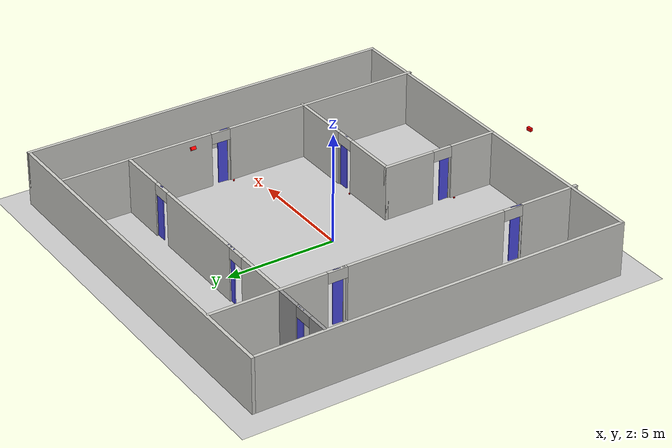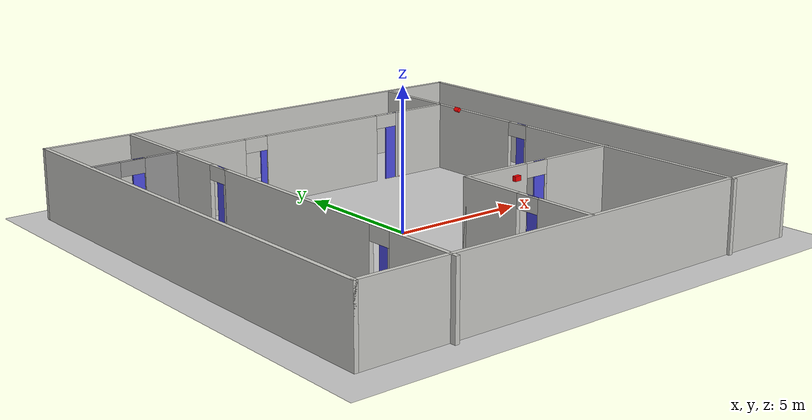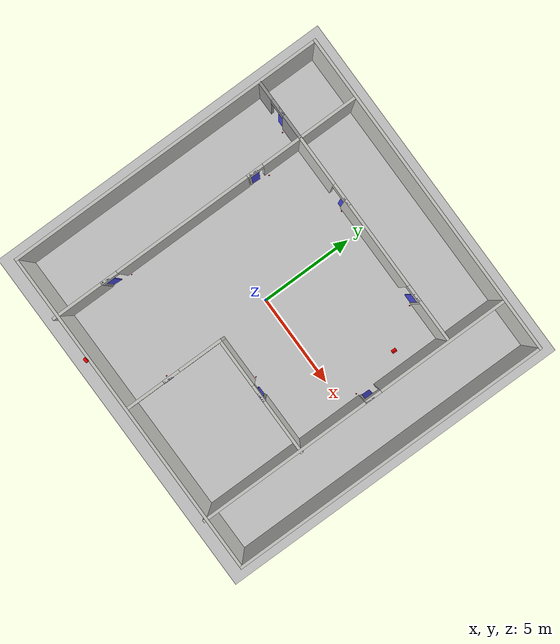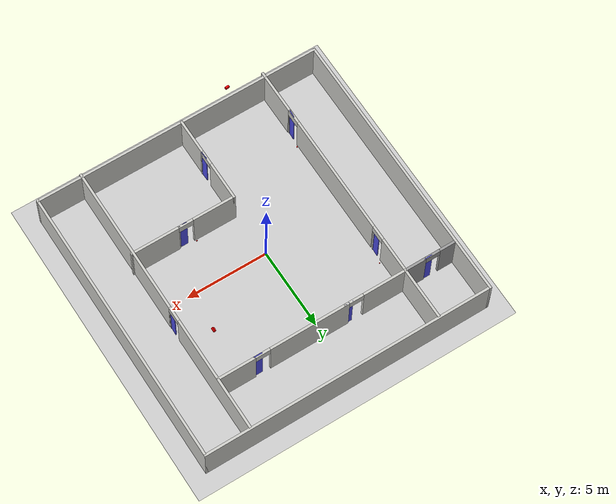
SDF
<sdf version="1.7">
 <world name="default">
  <light name="sun" type="directional">
   <pose>0 0 10 0 -0 0</pose>
   <diffuse>0.8 0.8 0.8 1</diffuse>
   <specular>0.2 0.2 0.2 1</specular>
   <attenuation>
    <range>1000</range>
    <constant>0.9</constant>
    <linear>0.01</linear>
    <quadratic>0.001</quadratic>
   </attenuation>
   <direction>-0.5 0.1 -0.9</direction>
   <spot><inner_angle>0</inner_angle><outer_angle>0</outer_angle><falloff>0</falloff></spot>
  </light>
  <model name="ground_plane">
   <static>1</static>
   <link name="link">
    <collision name="collision">
     <geometry><plane><normal>0 0 1</normal><size>100 100</size></plane></geometry>
     <surface><friction><ode><mu>100</mu><mu2>50</mu2></ode></friction></surface>
    </collision>
    <visual name="visual">
     <cast_shadows>0</cast_shadows>
     <geometry><plane><normal>0 0 1</normal><size>100 100</size></plane></geometry>
     <material>
      <script><uri>file://media/materials/scripts/gazebo.material</uri><name>Gazebo/Grey</name></script>
     </material>
    </visual>
   </link>
  </model>
  <gravity>0 0 -9.8</gravity>
  <magnetic_field>6e-06 2.3e-05 -4.2e-05</magnetic_field>
  <atmosphere type="adiabatic"/>
  <physics type="ode">
   <max_step_size>0.001</max_step_size>
   <real_time_factor>1</real_time_factor>
   <real_time_update_rate>1000</real_time_update_rate>
  </physics>
  <scene><ambient>0.4 0.4 0.4 1</ambient><background>0.7 0.7 0.7 1</background><shadows>1</shadows></scene>
  <spherical_coordinates>
   <surface_model>EARTH_WGS84</surface_model>
   <latitude_deg>0</latitude_deg>
   <longitude_deg>0</longitude_deg>
   <elevation>0</elevation>
   <heading_deg>0</heading_deg>
  </spherical_coordinates>
  <model name="jamworldp">
   <pose>0.50308 0.278247 0 0 -0 0</pose>
   <link name="Wall_29">
    <collision name="Wall_29_Collision">
     <geometry><box><size>17.75 0.15 2.5</size></box></geometry>
     <pose>0 0 1.25 0 -0 0</pose>
    </collision>
    <visual name="Wall_29_Visual">
     <pose>0 0 1.25 0 -0 0</pose>
     <geometry><box><size>17.75 0.15 2.5</size></box></geometry>
     <material>
      <script><uri>file://media/materials/scripts/gazebo.material</uri><name>Gazebo/CeilingTiled</name></script>
      <ambient>1 1 1 1</ambient>
     </material>
     <meta><layer>0</layer></meta>
    </visual>
    <pose>-0 8.65066 0 0 -0 0</pose>
   </link>
   <link name="Wall_31">
    <collision name="Wall_31_Collision">
     <geometry><box><size>17.25 0.15 2.5</size></box></geometry>
     <pose>0 0 1.25 0 -0 0</pose>
    </collision>
    <visual name="Wall_31_Visual">
     <pose>0 0 1.25 0 -0 0</pose>
     <geometry><box><size>17.25 0.15 2.5</size></box></geometry>
     <material>
      <script><uri>file://media/materials/scripts/gazebo.material</uri><name>Gazebo/CeilingTiled</name></script>
      <ambient>1 1 1 1</ambient>
     </material>
     <meta><layer>0</layer></meta>
    </visual>
    <pose>8.8 0.100659 0 0 -0 -1.5708</pose>
   </link>
   <link name="Wall_35">
    <collision name="Wall_35_Collision">
     <geometry><box><size>17.25 0.15 2.5</size></box></geometry>
     <pose>0 0 1.25 0 -0 0</pose>
    </collision>
    <visual name="Wall_35_Visual">
     <pose>0 0 1.25 0 -0 0</pose>
     <geometry><box><size>17.25 0.15 2.5</size></box></geometry>
     <material>
      <script><uri>file://media/materials/scripts/gazebo.material</uri><name>Gazebo/CeilingTiled</name></script>
      <ambient>1 1 1 1</ambient>
     </material>
     <meta><layer>0</layer></meta>
    </visual>
    <pose>-8.8 0.100659 0 0 -0 -1.5708</pose>
   </link>
   <link name="Wall_36">
    <collision name="Wall_36_Collision">
     <geometry><box><size>17.75 0.15 2.5</size></box></geometry>
     <pose>0 0 1.25 0 -0 0</pose>
    </collision>
    <visual name="Wall_36_Visual">
     <pose>0 0 1.25 0 -0 0</pose>
     <geometry><box><size>17.75 0.15 2.5</size></box></geometry>
     <material>
      <script><uri>file://media/materials/scripts/gazebo.material</uri><name>Gazebo/CeilingTiled</name></script>
      <ambient>1 1 1 1</ambient>
     </material>
     <meta><layer>0</layer></meta>
    </visual>
    <pose>-0 -8.44934 0 0 -0 0</pose>
   </link>
   <link name="Wall_39">
    <pose>6.05803 -0.003168 0 0 -0 -1.5708</pose>
    <visual name="Wall_39_Visual_0">
     <pose>-5.08884 0 1.25 0 -0 0</pose>
     <geometry><box><size>7.07231 0.15 2.5</size></box></geometry>
     <material>
      <script><uri>file://media/materials/scripts/gazebo.material</uri><name>Gazebo/CeilingTiled</name></script>
      <ambient>1 1 1 1</ambient>
     </material>
     <meta><layer>0</layer></meta>
    </visual>
    <collision name="Wall_39_Collision_0">
     <geometry><box><size>7.07231 0.15 2.5</size></box></geometry>
     <pose>-5.08884 0 1.25 0 -0 0</pose>
    </collision>
    <visual name="Wall_39_Visual_1">
     <pose>3.98616 0 1.25 0 -0 0</pose>
     <geometry><box><size>9.27769 0.15 2.5</size></box></geometry>
     <material>
      <script><uri>file://media/materials/scripts/gazebo.material</uri><name>Gazebo/CeilingTiled</name></script>
      <ambient>1 1 1 1</ambient>
     </material>
     <meta><layer>0</layer></meta>
    </visual>
    <collision name="Wall_39_Collision_1">
     <geometry><box><size>9.27769 0.15 2.5</size></box></geometry>
     <pose>3.98616 0 1.25 0 -0 0</pose>
    </collision>
    <visual name="Wall_39_Visual_2">
     <pose>-1.10269 0 2.25 0 -0 0</pose>
     <geometry><box><size>0.9 0.15 0.5</size></box></geometry>
     <material>
      <script><uri>file://media/materials/scripts/gazebo.material</uri><name>Gazebo/CeilingTiled</name></script>
      <ambient>1 1 1 1</ambient>
     </material>
     <meta><layer>0</layer></meta>
    </visual>
    <collision name="Wall_39_Collision_2">
     <geometry><box><size>0.9 0.15 0.5</size></box></geometry>
     <pose>-1.10269 0 2.25 0 -0 0</pose>
    </collision>
   </link>
   <link name="Wall_41">
    <pose>-0.217405 -5.75402 0 0 -0 1.5708</pose>
    <visual name="Wall_41_Visual_0">
     <pose>-1.65323 0 1.25 0 -0 0</pose>
     <geometry><box><size>2.19354 0.15 2.5</size></box></geometry>
     <material>
      <script><uri>file://media/materials/scripts/gazebo.material</uri><name>Gazebo/CeilingTiled</name></script>
      <ambient>1 1 1 1</ambient>
     </material>
     <meta><layer>0</layer></meta>
    </visual>
    <collision name="Wall_41_Collision_0">
     <geometry><box><size>2.19354 0.15 2.5</size></box></geometry>
     <pose>-1.65323 0 1.25 0 -0 0</pose>
    </collision>
    <visual name="Wall_41_Visual_1">
     <pose>1.54677 0 1.25 0 -0 0</pose>
     <geometry><box><size>2.40646 0.15 2.5</size></box></geometry>
     <material>
      <script><uri>file://media/materials/scripts/gazebo.material</uri><name>Gazebo/CeilingTiled</name></script>
      <ambient>1 1 1 1</ambient>
     </material>
     <meta><layer>0</layer></meta>
    </visual>
    <collision name="Wall_41_Collision_1">
     <geometry><box><size>2.40646 0.15 2.5</size></box></geometry>
     <pose>1.54677 0 1.25 0 -0 0</pose>
    </collision>
    <visual name="Wall_41_Visual_2">
     <pose>-0.106458 0 2.25 0 -0 0</pose>
     <geometry><box><size>0.9 0.15 0.5</size></box></geometry>
     <material>
      <script><uri>file://media/materials/scripts/gazebo.material</uri><name>Gazebo/CeilingTiled</name></script>
      <ambient>1 1 1 1</ambient>
     </material>
     <meta><layer>0</layer></meta>
    </visual>
    <collision name="Wall_41_Collision_2">
     <geometry><box><size>0.9 0.15 0.5</size></box></geometry>
     <pose>-0.106458 0 2.25 0 -0 0</pose>
    </collision>
   </link>
   <link name="Wall_42">
    <pose>2.95759 -3.07902 0 0 -0 0</pose>
    <visual name="Wall_42_Visual_0">
     <pose>-1.92496 0 1.25 0 -0 0</pose>
     <geometry><box><size>2.65009 0.15 2.5</size></box></geometry>
     <material>
      <script><uri>file://media/materials/scripts/gazebo.material</uri><name>Gazebo/CeilingTiled</name></script>
      <ambient>1 1 1 1</ambient>
     </material>
     <meta><layer>0</layer></meta>
    </visual>
    <collision name="Wall_42_Collision_0">
     <geometry><box><size>2.65009 0.15 2.5</size></box></geometry>
     <pose>-1.92496 0 1.25 0 -0 0</pose>
    </collision>
    <visual name="Wall_42_Visual_1">
     <pose>1.77504 0 1.25 0 -0 0</pose>
     <geometry><box><size>2.94991 0.15 2.5</size></box></geometry>
     <material>
      <script><uri>file://media/materials/scripts/gazebo.material</uri><name>Gazebo/CeilingTiled</name></script>
      <ambient>1 1 1 1</ambient>
     </material>
     <meta><layer>0</layer></meta>
    </visual>
    <collision name="Wall_42_Collision_1">
     <geometry><box><size>2.94991 0.15 2.5</size></box></geometry>
     <pose>1.77504 0 1.25 0 -0 0</pose>
    </collision>
    <visual name="Wall_42_Visual_2">
     <pose>-0.149912 0 2.25 0 -0 0</pose>
     <geometry><box><size>0.9 0.15 0.5</size></box></geometry>
     <material>
      <script><uri>file://media/materials/scripts/gazebo.material</uri><name>Gazebo/CeilingTiled</name></script>
      <ambient>1 1 1 1</ambient>
     </material>
     <meta><layer>0</layer></meta>
    </visual>
    <collision name="Wall_42_Collision_2">
     <geometry><box><size>0.9 0.15 0.5</size></box></geometry>
     <pose>-0.149912 0 2.25 0 -0 0</pose>
    </collision>
   </link>
   <link name="Wall_44">
    <pose>0.217802 5.44934 0 0 -0 3.14159</pose>
    <visual name="Wall_44_Visual_0">
     <pose>-4.71744 0 1.25 0 -0 0</pose>
     <geometry><box><size>2.31512 0.15 2.5</size></box></geometry>
     <material>
      <script><uri>file://media/materials/scripts/gazebo.material</uri><name>Gazebo/CeilingTiled</name></script>
      <ambient>1 1 1 1</ambient>
     </material>
     <meta><layer>0</layer></meta>
    </visual>
    <collision name="Wall_44_Collision_0">
     <geometry><box><size>2.31512 0.15 2.5</size></box></geometry>
     <pose>-4.71744 0 1.25 0 -0 0</pose>
    </collision>
    <visual name="Wall_44_Visual_1">
     <pose>-0.209881 0 1.25 0 -0 0</pose>
     <geometry><box><size>4.9 0.15 2.5</size></box></geometry>
     <material>
      <script><uri>file://media/materials/scripts/gazebo.material</uri><name>Gazebo/CeilingTiled</name></script>
      <ambient>1 1 1 1</ambient>
     </material>
     <meta><layer>0</layer></meta>
    </visual>
    <collision name="Wall_44_Collision_1">
     <geometry><box><size>4.9 0.15 2.5</size></box></geometry>
     <pose>-0.209881 0 1.25 0 -0 0</pose>
    </collision>
    <visual name="Wall_44_Visual_2">
     <pose>4.50756 0 1.25 0 -0 0</pose>
     <geometry><box><size>2.73488 0.15 2.5</size></box></geometry>
     <material>
      <script><uri>file://media/materials/scripts/gazebo.material</uri><name>Gazebo/CeilingTiled</name></script>
      <ambient>1 1 1 1</ambient>
     </material>
     <meta><layer>0</layer></meta>
    </visual>
    <collision name="Wall_44_Collision_2">
     <geometry><box><size>2.73488 0.15 2.5</size></box></geometry>
     <pose>4.50756 0 1.25 0 -0 0</pose>
    </collision>
    <visual name="Wall_44_Visual_3">
     <pose>-3.10988 0 2.25 0 -0 0</pose>
     <geometry><box><size>0.9 0.15 0.5</size></box></geometry>
     <material>
      <script><uri>file://media/materials/scripts/gazebo.material</uri><name>Gazebo/CeilingTiled</name></script>
      <ambient>1 1 1 1</ambient>
     </material>
     <meta><layer>0</layer></meta>
    </visual>
    <collision name="Wall_44_Collision_3">
     <geometry><box><size>0.9 0.15 0.5</size></box></geometry>
     <pose>-3.10988 0 2.25 0 -0 0</pose>
    </collision>
    <visual name="Wall_44_Visual_4">
     <pose>2.69012 0 2.25 0 -0 0</pose>
     <geometry><box><size>0.9 0.15 0.5</size></box></geometry>
     <material>
      <script><uri>file://media/materials/scripts/gazebo.material</uri><name>Gazebo/CeilingTiled</name></script>
      <ambient>1 1 1 1</ambient>
     </material>
     <meta><layer>0</layer></meta>
    </visual>
    <collision name="Wall_44_Collision_4">
     <geometry><box><size>0.9 0.15 0.5</size></box></geometry>
     <pose>2.69012 0 2.25 0 -0 0</pose>
    </collision>
   </link>
   <link name="Wall_45">
    <collision name="Wall_45_Collision">
     <geometry><box><size>3.25 0.15 2.5</size></box></geometry>
     <pose>0 0 1.25 0 -0 0</pose>
    </collision>
    <visual name="Wall_45_Visual">
     <pose>0 0 1.25 0 -0 0</pose>
     <geometry><box><size>3.25 0.15 2.5</size></box></geometry>
     <material>
      <script><uri>file://media/materials/scripts/gazebo.material</uri><name>Gazebo/CeilingTiled</name></script>
      <ambient>1 1 1 1</ambient>
     </material>
     <meta><layer>0</layer></meta>
    </visual>
    <pose>-5.5822 6.99934 0 0 -0 1.5708</pose>
   </link>
   <link name="Wall_47">
    <pose>-5.5822 -1.60066 0 0 -0 -1.5708</pose>
    <visual name="Wall_47_Visual_0">
     <pose>-6.01759 0 1.25 0 -0 0</pose>
     <geometry><box><size>2.21482 0.15 2.5</size></box></geometry>
     <material>
      <script><uri>file://media/materials/scripts/gazebo.material</uri><name>Gazebo/CeilingTiled</name></script>
      <ambient>1 1 1 1</ambient>
     </material>
     <meta><layer>0</layer></meta>
    </visual>
    <collision name="Wall_47_Collision_0">
     <geometry><box><size>2.21482 0.15 2.5</size></box></geometry>
     <pose>-6.01759 0 1.25 0 -0 0</pose>
    </collision>
    <visual name="Wall_47_Visual_1">
     <pose>-0.280177 0 1.25 0 -0 0</pose>
     <geometry><box><size>7.46 0.15 2.5</size></box></geometry>
     <material>
      <script><uri>file://media/materials/scripts/gazebo.material</uri><name>Gazebo/CeilingTiled</name></script>
      <ambient>1 1 1 1</ambient>
     </material>
     <meta><layer>0</layer></meta>
    </visual>
    <collision name="Wall_47_Collision_1">
     <geometry><box><size>7.46 0.15 2.5</size></box></geometry>
     <pose>-0.280177 0 1.25 0 -0 0</pose>
    </collision>
    <visual name="Wall_47_Visual_2">
     <pose>5.73741 0 1.25 0 -0 0</pose>
     <geometry><box><size>2.77518 0.15 2.5</size></box></geometry>
     <material>
      <script><uri>file://media/materials/scripts/gazebo.material</uri><name>Gazebo/CeilingTiled</name></script>
      <ambient>1 1 1 1</ambient>
     </material>
     <meta><layer>0</layer></meta>
    </visual>
    <collision name="Wall_47_Collision_2">
     <geometry><box><size>2.77518 0.15 2.5</size></box></geometry>
     <pose>5.73741 0 1.25 0 -0 0</pose>
    </collision>
    <visual name="Wall_47_Visual_3">
     <pose>-4.46018 0 2.25 0 -0 0</pose>
     <geometry><box><size>0.9 0.15 0.5</size></box></geometry>
     <material>
      <script><uri>file://media/materials/scripts/gazebo.material</uri><name>Gazebo/CeilingTiled</name></script>
      <ambient>1 1 1 1</ambient>
     </material>
     <meta><layer>0</layer></meta>
    </visual>
    <collision name="Wall_47_Collision_3">
     <geometry><box><size>0.9 0.15 0.5</size></box></geometry>
     <pose>-4.46018 0 2.25 0 -0 0</pose>
    </collision>
    <visual name="Wall_47_Visual_4">
     <pose>3.89982 0 2.25 0 -0 0</pose>
     <geometry><box><size>0.9 0.15 0.5</size></box></geometry>
     <material>
      <script><uri>file://media/materials/scripts/gazebo.material</uri><name>Gazebo/CeilingTiled</name></script>
      <ambient>1 1 1 1</ambient>
     </material>
     <meta><layer>0</layer></meta>
    </visual>
    <collision name="Wall_47_Collision_4">
     <geometry><box><size>0.9 0.15 0.5</size></box></geometry>
     <pose>3.89982 0 2.25 0 -0 0</pose>
    </collision>
   </link>
   <link name="Wall_49">
    <pose>-7.1322 5.44934 0 0 -0 3.14159</pose>
    <visual name="Wall_49_Visual_0">
     <pose>-0.94744 0 1.25 0 -0 0</pose>
     <geometry><box><size>1.35512 0.15 2.5</size></box></geometry>
     <material>
      <script><uri>file://media/materials/scripts/gazebo.material</uri><name>Gazebo/Grey</name></script>
      <ambient>1 1 1 1</ambient>
     </material>
     <meta><layer>0</layer></meta>
    </visual>
    <collision name="Wall_49_Collision_0">
     <geometry><box><size>1.35512 0.15 2.5</size></box></geometry>
     <pose>-0.94744 0 1.25 0 -0 0</pose>
    </collision>
    <visual name="Wall_49_Visual_1">
     <pose>1.12756 0 1.25 0 -0 0</pose>
     <geometry><box><size>0.99488 0.15 2.5</size></box></geometry>
     <material>
      <script><uri>file://media/materials/scripts/gazebo.material</uri><name>Gazebo/Grey</name></script>
      <ambient>1 1 1 1</ambient>
     </material>
     <meta><layer>0</layer></meta>
    </visual>
    <collision name="Wall_49_Collision_1">
     <geometry><box><size>0.99488 0.15 2.5</size></box></geometry>
     <pose>1.12756 0 1.25 0 -0 0</pose>
    </collision>
    <visual name="Wall_49_Visual_2">
     <pose>0.18012 0 2.25 0 -0 0</pose>
     <geometry><box><size>0.9 0.15 0.5</size></box></geometry>
     <material>
      <script><uri>file://media/materials/scripts/gazebo.material</uri><name>Gazebo/Grey</name></script>
      <ambient>1 1 1 1</ambient>
     </material>
     <meta><layer>0</layer></meta>
    </visual>
    <collision name="Wall_49_Collision_2">
     <geometry><box><size>0.9 0.15 0.5</size></box></geometry>
     <pose>0.18012 0 2.25 0 -0 0</pose>
    </collision>
   </link>
   <static>1</static>
  </model>
  <model name="door_1">
   <pose>-1.51762 5.7187 0 0 -0 0</pose>
   <link name="door_frame">
    <pose>0.25 0 1.25 0 -0 0</pose>
    <collision name="frame_collision"><geometry><box><size>0.1 1 2.5</size></box></geometry></collision>
    <visual name="frame_visual">
     <geometry><box><size>0.1 0.1 2.5</size></box></geometry>
     <material><ambient>0.7 0.7 0.7 1</ambient><diffuse>0.8 0.8 0.8 1</diffuse></material>
    </visual>
    <kinematic>1</kinematic>
    <inertial>
     <inertia><ixx>1</ixx><ixy>0</ixy><ixz>0</ixz><iyy>1</iyy><iyz>0</iyz><izz>1</izz></inertia>
     <mass>1</mass>
    </inertial>
   </link>
   <link name="door">
    <kinematic>1</kinematic>
    <pose>0 0 1.25 0 -0 0</pose>
    <collision name="door_collision"><geometry><box><size>0.5 0.05 2.5</size></box></geometry></collision>
    <visual name="door_visual">
     <geometry><box><size>0.5 0.05 2.5</size></box></geometry>
     <material><ambient>0.2 0.2 0.8 1</ambient><diffuse>0.3 0.3 0.9 1</diffuse></material>
    </visual>
    <inertial>
     <inertia><ixx>1</ixx><ixy>0</ixy><ixz>0</ixz><iyy>1</iyy><iyz>0</iyz><izz>1</izz></inertia>
     <mass>1</mass>
    </inertial>
   </link>
   <joint name="door_joint" type="prismatic">
    <parent>door_frame</parent>
    <child>door</child>
    <axis>
     <xyz>1 0 0</xyz>
     <limit><lower>0</lower><upper>2.0</upper></limit>
     <dynamics><spring_reference>0</spring_reference><spring_stiffness>0</spring_stiffness></dynamics>
    </axis>
   </joint>
   <plugin name="door_control_plugin" filename="libdoor_control_plugin.so">
    <door_joint>door_joint</door_joint>
    <speed>1.0</speed>
    <open_target>1.0</open_target>
    <close_target>0.0</close_target>
   </plugin>
   <static>0</static>
  </model>
  <model name="door_2">
   <pose>4.08036 5.7018 0 0 -0 0</pose>
   <link name="door_frame">
    <pose>0.25 0 1.25 0 -0 0</pose>
    <collision name="frame_collision"><geometry><box><size>0.1 1 2.5</size></box></geometry></collision>
    <visual name="frame_visual">
     <geometry><box><size>0.1 0.1 2.5</size></box></geometry>
     <material><ambient>0.7 0.7 0.7 1</ambient><diffuse>0.8 0.8 0.8 1</diffuse></material>
    </visual>
    <kinematic>1</kinematic>
    <inertial>
     <inertia><ixx>1</ixx><ixy>0</ixy><ixz>0</ixz><iyy>1</iyy><iyz>0</iyz><izz>1</izz></inertia>
     <mass>1</mass>
    </inertial>
   </link>
   <link name="door">
    <kinematic>1</kinematic>
    <pose>0 0 1.25 0 -0 0</pose>
    <collision name="door_collision"><geometry><box><size>0.5 0.05 2.5</size></box></geometry></collision>
    <visual name="door_visual">
     <geometry><box><size>0.5 0.05 2.5</size></box></geometry>
     <material><ambient>0.2 0.2 0.8 1</ambient><diffuse>0.3 0.3 0.9 1</diffuse></material>
    </visual>
    <inertial>
     <inertia><ixx>1</ixx><ixy>0</ixy><ixz>0</ixz><iyy>1</iyy><iyz>0</iyz><izz>1</izz></inertia>
     <mass>1</mass>
    </inertial>
   </link>
   <joint name="door_joint" type="prismatic">
    <parent>door_frame</parent>
    <child>door</child>
    <axis>
     <xyz>1 0 0</xyz>
     <limit><lower>0</lower><upper>2.0</upper></limit>
     <dynamics><spring_reference>0</spring_reference><spring_stiffness>0</spring_stiffness></dynamics>
    </axis>
   </joint>
   <plugin name="door_control_plugin" filename="libdoor_control_plugin.so">
    <door_joint>door_joint</door_joint>
    <speed>1.0</speed>
    <open_target>1.0</open_target>
    <close_target>0.0</close_target>
   </plugin>
   <static>0</static>
  </model>
  <model name="door_3">
   <pose>3.47332 -2.82477 0 0 -0 0</pose>
   <link name="door_frame">
    <pose>0.25 0 1.25 0 -0 0</pose>
    <collision name="frame_collision"><geometry><box><size>0.1 1 2.5</size></box></geometry></collision>
    <visual name="frame_visual">
     <geometry><box><size>0.1 0.1 2.5</size></box></geometry>
     <material><ambient>0.7 0.7 0.7 1</ambient><diffuse>0.8 0.8 0.8 1</diffuse></material>
    </visual>
    <kinematic>1</kinematic>
    <inertial>
     <inertia><ixx>1</ixx><ixy>0</ixy><ixz>0</ixz><iyy>1</iyy><iyz>0</iyz><izz>1</izz></inertia>
     <mass>1</mass>
    </inertial>
   </link>
   <link name="door">
    <kinematic>1</kinematic>
    <pose>0 0 1.25 0 -0 0</pose>
    <collision name="door_collision"><geometry><box><size>0.5 0.05 2.5</size></box></geometry></collision>
    <visual name="door_visual">
     <geometry><box><size>0.5 0.05 2.5</size></box></geometry>
     <material><ambient>0.2 0.2 0.8 1</ambient><diffuse>0.3 0.3 0.9 1</diffuse></material>
    </visual>
    <inertial>
     <inertia><ixx>1</ixx><ixy>0</ixy><ixz>0</ixz><iyy>1</iyy><iyz>0</iyz><izz>1</izz></inertia>
     <mass>1</mass>
    </inertial>
   </link>
   <joint name="door_joint" type="prismatic">
    <parent>door_frame</parent>
    <child>door</child>
    <axis>
     <xyz>1 0 0</xyz>
     <limit><lower>0</lower><upper>2.0</upper></limit>
     <dynamics><spring_reference>0</spring_reference><spring_stiffness>0</spring_stiffness></dynamics>
    </axis>
   </joint>
   <plugin name="door_control_plugin" filename="libdoor_control_plugin.so">
    <door_joint>door_joint</door_joint>
    <speed>1.0</speed>
    <open_target>1.0</open_target>
    <close_target>0.0</close_target>
   </plugin>
   <static>0</static>
  </model>
  <model name="door_4">
   <pose>-6.53289 5.74482 0 0 -0 0</pose>
   <link name="door_frame">
    <pose>0.25 0 1.25 0 -0 0</pose>
    <collision name="frame_collision"><geometry><box><size>0.1 1 2.5</size></box></geometry></collision>
    <visual name="frame_visual">
     <geometry><box><size>0.1 0.1 2.5</size></box></geometry>
     <material><ambient>0.7 0.7 0.7 1</ambient><diffuse>0.8 0.8 0.8 1</diffuse></material>
    </visual>
    <kinematic>1</kinematic>
    <inertial>
     <inertia><ixx>1</ixx><ixy>0</ixy><ixz>0</ixz><iyy>1</iyy><iyz>0</iyz><izz>1</izz></inertia>
     <mass>1</mass>
    </inertial>
   </link>
   <link name="door">
    <kinematic>1</kinematic>
    <pose>0 0 1.25 0 -0 0</pose>
    <collision name="door_collision"><geometry><box><size>0.5 0.05 2.5</size></box></geometry></collision>
    <visual name="door_visual">
     <geometry><box><size>0.5 0.05 2.5</size></box></geometry>
     <material><ambient>0.2 0.2 0.8 1</ambient><diffuse>0.3 0.3 0.9 1</diffuse></material>
    </visual>
    <inertial>
     <inertia><ixx>1</ixx><ixy>0</ixy><ixz>0</ixz><iyy>1</iyy><iyz>0</iyz><izz>1</izz></inertia>
     <mass>1</mass>
    </inertial>
   </link>
   <joint name="door_joint" type="prismatic">
    <parent>door_frame</parent>
    <child>door</child>
    <axis>
     <xyz>1 0 0</xyz>
     <limit><lower>0</lower><upper>2.0</upper></limit>
     <dynamics><spring_reference>0</spring_reference><spring_stiffness>0</spring_stiffness></dynamics>
    </axis>
   </joint>
   <plugin name="door_control_plugin" filename="libdoor_control_plugin.so">
    <door_joint>door_joint</door_joint>
    <speed>1.0</speed>
    <open_target>1.0</open_target>
    <close_target>0.0</close_target>
   </plugin>
   <static>0</static>
  </model>
  <model name="door_5">
   <pose>-5.04717 3.06351 0 0 0 -1.62219</pose>
   <link name="door_frame">
    <pose>0.25 0 1.25 0 -0 0</pose>
    <collision name="frame_collision"><geometry><box><size>0.1 1 2.5</size></box></geometry></collision>
    <visual name="frame_visual">
     <geometry><box><size>0.1 0.1 2.5</size></box></geometry>
     <material><ambient>0.7 0.7 0.7 1</ambient><diffuse>0.8 0.8 0.8 1</diffuse></material>
    </visual>
    <kinematic>1</kinematic>
    <inertial>
     <inertia><ixx>1</ixx><ixy>0</ixy><ixz>0</ixz><iyy>1</iyy><iyz>0</iyz><izz>1</izz></inertia>
     <mass>1</mass>
    </inertial>
   </link>
   <link name="door">
    <kinematic>1</kinematic>
    <pose>0 0 1.25 0 -0 0</pose>
    <collision name="door_collision"><geometry><box><size>0.5 0.05 2.5</size></box></geometry></collision>
    <visual name="door_visual">
     <geometry><box><size>0.5 0.05 2.5</size></box></geometry>
     <material><ambient>0.2 0.2 0.8 1</ambient><diffuse>0.3 0.3 0.9 1</diffuse></material>
    </visual>
    <inertial>
     <inertia><ixx>1</ixx><ixy>0</ixy><ixz>0</ixz><iyy>1</iyy><iyz>0</iyz><izz>1</izz></inertia>
     <mass>1</mass>
    </inertial>
   </link>
   <joint name="door_joint" type="prismatic">
    <parent>door_frame</parent>
    <child>door</child>
    <axis>
     <xyz>1 0 0</xyz>
     <limit><lower>0</lower><upper>2.0</upper></limit>
     <dynamics><spring_reference>0</spring_reference><spring_stiffness>0</spring_stiffness></dynamics>
    </axis>
   </joint>
   <plugin name="door_control_plugin" filename="libdoor_control_plugin.so">
    <door_joint>door_joint</door_joint>
    <speed>1.0</speed>
    <open_target>1.0</open_target>
    <close_target>0.0</close_target>
   </plugin>
   <static>0</static>
  </model>
  <model name="door_6">
   <pose>6.5908 1.24508 0 0 0 -1.60563</pose>
   <link name="door_frame">
    <pose>0.25 0 1.25 0 -0 0</pose>
    <collision name="frame_collision"><geometry><box><size>0.1 1 2.5</size></box></geometry></collision>
    <visual name="frame_visual">
     <geometry><box><size>0.1 0.1 2.5</size></box></geometry>
     <material><ambient>0.7 0.7 0.7 1</ambient><diffuse>0.8 0.8 0.8 1</diffuse></material>
    </visual>
    <kinematic>1</kinematic>
    <inertial>
     <inertia><ixx>1</ixx><ixy>0</ixy><ixz>0</ixz><iyy>1</iyy><iyz>0</iyz><izz>1</izz></inertia>
     <mass>1</mass>
    </inertial>
   </link>
   <link name="door">
    <kinematic>1</kinematic>
    <pose>0 0 1.25 0 -0 0</pose>
    <collision name="door_collision"><geometry><box><size>0.5 0.05 2.5</size></box></geometry></collision>
    <visual name="door_visual">
     <geometry><box><size>0.5 0.05 2.5</size></box></geometry>
     <material><ambient>0.2 0.2 0.8 1</ambient><diffuse>0.3 0.3 0.9 1</diffuse></material>
    </visual>
    <inertial>
     <inertia><ixx>1</ixx><ixy>0</ixy><ixz>0</ixz><iyy>1</iyy><iyz>0</iyz><izz>1</izz></inertia>
     <mass>1</mass>
    </inertial>
   </link>
   <joint name="door_joint" type="prismatic">
    <parent>door_frame</parent>
    <child>door</child>
    <axis>
     <xyz>1 0 0</xyz>
     <limit><lower>0</lower><upper>2.0</upper></limit>
     <dynamics><spring_reference>0</spring_reference><spring_stiffness>0</spring_stiffness></dynamics>
    </axis>
   </joint>
   <plugin name="door_control_plugin" filename="libdoor_control_plugin.so">
    <door_joint>door_joint</door_joint>
    <speed>1.0</speed>
    <open_target>1.0</open_target>
    <close_target>0.0</close_target>
   </plugin>
   <static>0</static>
  </model>
  <model name="door_7">
   <pose>-5.06916 -5.38134 0 0 0 -1.64201</pose>
   <link name="door_frame">
    <pose>0.25 0 1.25 0 -0 0</pose>
    <collision name="frame_collision"><geometry><box><size>0.1 1 2.5</size></box></geometry></collision>
    <visual name="frame_visual">
     <geometry><box><size>0.1 0.1 2.5</size></box></geometry>
     <material><ambient>0.7 0.7 0.7 1</ambient><diffuse>0.8 0.8 0.8 1</diffuse></material>
    </visual>
    <kinematic>1</kinematic>
    <inertial>
     <inertia><ixx>1</ixx><ixy>0</ixy><ixz>0</ixz><iyy>1</iyy><iyz>0</iyz><izz>1</izz></inertia>
     <mass>1</mass>
    </inertial>
   </link>
   <link name="door">
    <kinematic>1</kinematic>
    <pose>0 0 1.25 0 -0 0</pose>
    <collision name="door_collision"><geometry><box><size>0.5 0.05 2.5</size></box></geometry></collision>
    <visual name="door_visual">
     <geometry><box><size>0.5 0.05 2.5</size></box></geometry>
     <material><ambient>0.2 0.2 0.8 1</ambient><diffuse>0.3 0.3 0.9 1</diffuse></material>
    </visual>
    <inertial>
     <inertia><ixx>1</ixx><ixy>0</ixy><ixz>0</ixz><iyy>1</iyy><iyz>0</iyz><izz>1</izz></inertia>
     <mass>1</mass>
    </inertial>
   </link>
   <joint name="door_joint" type="prismatic">
    <parent>door_frame</parent>
    <child>door</child>
    <axis>
     <xyz>1 0 0</xyz>
     <limit><lower>0</lower><upper>2.0</upper></limit>
     <dynamics><spring_reference>0</spring_reference><spring_stiffness>0</spring_stiffness></dynamics>
    </axis>
   </joint>
   <plugin name="door_control_plugin" filename="libdoor_control_plugin.so">
    <door_joint>door_joint</door_joint>
    <speed>1.0</speed>
    <open_target>1.0</open_target>
    <close_target>0.0</close_target>
   </plugin>
   <static>0</static>
  </model>
  <model name="door_8">
   <pose>0.325211 -5.75162 0 0 0 -1.54125</pose>
   <link name="door_frame">
    <pose>0.25 0 1.25 0 -0 0</pose>
    <collision name="frame_collision"><geometry><box><size>0.1 1 2.5</size></box></geometry></collision>
    <visual name="frame_visual">
     <geometry><box><size>0.1 0.1 2.5</size></box></geometry>
     <material><ambient>0.7 0.7 0.7 1</ambient><diffuse>0.8 0.8 0.8 1</diffuse></material>
    </visual>
    <kinematic>1</kinematic>
    <inertial>
     <inertia><ixx>1</ixx><ixy>0</ixy><ixz>0</ixz><iyy>1</iyy><iyz>0</iyz><izz>1</izz></inertia>
     <mass>1</mass>
    </inertial>
   </link>
   <link name="door">
    <kinematic>1</kinematic>
    <pose>0 0 1.25 0 -0 0</pose>
    <collision name="door_collision"><geometry><box><size>0.5 0.05 2.5</size></box></geometry></collision>
    <visual name="door_visual">
     <geometry><box><size>0.5 0.05 2.5</size></box></geometry>
     <material><ambient>0.2 0.2 0.8 1</ambient><diffuse>0.3 0.3 0.9 1</diffuse></material>
    </visual>
    <inertial>
     <inertia><ixx>1</ixx><ixy>0</ixy><ixz>0</ixz><iyy>1</iyy><iyz>0</iyz><izz>1</izz></inertia>
     <mass>1</mass>
    </inertial>
   </link>
   <joint name="door_joint" type="prismatic">
    <parent>door_frame</parent>
    <child>door</child>
    <axis>
     <xyz>1 0 0</xyz>
     <limit><lower>0</lower><upper>2.0</upper></limit>
     <dynamics><spring_reference>0</spring_reference><spring_stiffness>0</spring_stiffness></dynamics>
    </axis>
   </joint>
   <plugin name="door_control_plugin" filename="libdoor_control_plugin.so">
    <door_joint>door_joint</door_joint>
    <speed>1.0</speed>
    <open_target>1.0</open_target>
    <close_target>0.0</close_target>
   </plugin>
   <static>0</static>
  </model>
  <model name="Lidar_1">
   <link name="link_1">
    <inertial>
     <mass>0.00014111</mass>
     <inertia><ixx>7e-08</ixx><ixy>0</ixy><ixz>0</ixz><iyy>7e-08</iyy><iyz>0</iyz><izz>6e-08</izz></inertia>
    </inertial>
    <visual name="visual">
     <geometry><box><size>0.048286 0.048861 0.059852</size></box></geometry>
     <material>
      <lighting>1</lighting>
      <script><uri>file://media/materials/scripts/gazebo.material</uri><name>Gazebo/Grey</name></script>
      <shader type="pixel"><normal_map>__default__</normal_map></shader>
      <ambient>1 0 0 1</ambient>
      <diffuse>0.7 0.7 0.7 1</diffuse>
      <specular>0.01 0.01 0.01 1</specular>
      <emissive>0 0 0 1</emissive>
     </material>
    </visual>
    <collision name="collision">
     <geometry><box><size>0.048286 0.048861 0.059852</size></box></geometry>
     <surface>
      <friction>
       <ode><mu>1</mu><mu2>1</mu2><fdir1>0 0 0</fdir1><slip1>0</slip1><slip2>0</slip2></ode>
       <torsional>
        <coefficient>1</coefficient>
        <patch_radius>0</patch_radius>
        <surface_radius>0</surface_radius>
        <use_patch_radius>1</use_patch_radius>
        <ode><slip>0</slip></ode>
       </torsional>
      </friction>
      <bounce><restitution_coefficient>0</restitution_coefficient><threshold>1e+06</threshold></bounce>
      <contact>
       <collide_without_contact>0</collide_without_contact>
       <collide_without_contact_bitmask>1</collide_without_contact_bitmask>
       <collide_bitmask>1</collide_bitmask>
       <ode>
        <soft_cfm>0</soft_cfm>
        <soft_erp>0.2</soft_erp>
        <kp>1e+13</kp>
        <kd>1</kd>
        <max_vel>0.01</max_vel>
        <min_depth>0</min_depth>
       </ode>
       <bullet>
        <split_impulse>1</split_impulse>
        <split_impulse_penetration_threshold>-0.01</split_impulse_penetration_threshold>
        <soft_cfm>0</soft_cfm>
        <soft_erp>0.2</soft_erp>
        <kp>1e+13</kp>
        <kd>1</kd>
       </bullet>
      </contact>
     </surface>
    </collision>
   </link>
   <static>0</static>
   <pose>-6.20262 5.55681 0.024136 -3.01847 -1.57072 3.01849</pose>
  </model>
  <model name="Lidar_2">
   <link name="link_1">
    <inertial>
     <mass>0.00014111</mass>
     <inertia><ixx>7e-08</ixx><ixy>0</ixy><ixz>0</ixz><iyy>7e-08</iyy><iyz>0</iyz><izz>6e-08</izz></inertia>
    </inertial>
    <visual name="visual">
     <geometry><box><size>0.048286 0.048861 0.059852</size></box></geometry>
     <material>
      <lighting>1</lighting>
      <script><uri>file://media/materials/scripts/gazebo.material</uri><name>Gazebo/Grey</name></script>
      <shader type="pixel"><normal_map>__default__</normal_map></shader>
      <ambient>1 0 0 1</ambient>
      <diffuse>0.7 0.7 0.7 1</diffuse>
      <specular>0.01 0.01 0.01 1</specular>
      <emissive>0 0 0 1</emissive>
     </material>
    </visual>
    <collision name="collision">
     <geometry><box><size>0.048286 0.048861 0.059852</size></box></geometry>
     <surface>
      <friction>
       <ode><mu>1</mu><mu2>1</mu2><fdir1>0 0 0</fdir1><slip1>0</slip1><slip2>0</slip2></ode>
       <torsional>
        <coefficient>1</coefficient>
        <patch_radius>0</patch_radius>
        <surface_radius>0</surface_radius>
        <use_patch_radius>1</use_patch_radius>
        <ode><slip>0</slip></ode>
       </torsional>
      </friction>
      <bounce><restitution_coefficient>0</restitution_coefficient><threshold>1e+06</threshold></bounce>
      <contact>
       <collide_without_contact>0</collide_without_contact>
       <collide_without_contact_bitmask>1</collide_without_contact_bitmask>
       <collide_bitmask>1</collide_bitmask>
       <ode>
        <soft_cfm>0</soft_cfm>
        <soft_erp>0.2</soft_erp>
        <kp>1e+13</kp>
        <kd>1</kd>
        <max_vel>0.01</max_vel>
        <min_depth>0</min_depth>
       </ode>
       <bullet>
        <split_impulse>1</split_impulse>
        <split_impulse_penetration_threshold>-0.01</split_impulse_penetration_threshold>
        <soft_cfm>0</soft_cfm>
        <soft_erp>0.2</soft_erp>
        <kp>1e+13</kp>
        <kd>1</kd>
       </bullet>
      </contact>
     </surface>
    </collision>
   </link>
   <static>0</static>
   <pose>-4.94792 -4.60776 0.029927 2.6e-05 2e-06 -0.022293</pose>
  </model>
  <model name="Lidar_3">
   <link name="link_1">
    <inertial>
     <mass>0.00014111</mass>
     <inertia><ixx>7e-08</ixx><ixy>0</ixy><ixz>0</ixz><iyy>7e-08</iyy><iyz>0</iyz><izz>6e-08</izz></inertia>
    </inertial>
    <visual name="visual">
     <geometry><box><size>0.048286 0.048861 0.059852</size></box></geometry>
     <material>
      <lighting>1</lighting>
      <script><uri>file://media/materials/scripts/gazebo.material</uri><name>Gazebo/Grey</name></script>
      <shader type="pixel"><normal_map>__default__</normal_map></shader>
      <ambient>1 0 0 1</ambient>
      <diffuse>0.7 0.7 0.7 1</diffuse>
      <specular>0.01 0.01 0.01 1</specular>
      <emissive>0 0 0 1</emissive>
     </material>
    </visual>
    <collision name="collision">
     <geometry><box><size>0.048286 0.048861 0.059852</size></box></geometry>
     <surface>
      <friction>
       <ode><mu>1</mu><mu2>1</mu2><fdir1>0 0 0</fdir1><slip1>0</slip1><slip2>0</slip2></ode>
       <torsional>
        <coefficient>1</coefficient>
        <patch_radius>0</patch_radius>
        <surface_radius>0</surface_radius>
        <use_patch_radius>1</use_patch_radius>
        <ode><slip>0</slip></ode>
       </torsional>
      </friction>
      <bounce><restitution_coefficient>0</restitution_coefficient><threshold>1e+06</threshold></bounce>
      <contact>
       <collide_without_contact>0</collide_without_contact>
       <collide_without_contact_bitmask>1</collide_without_contact_bitmask>
       <collide_bitmask>1</collide_bitmask>
       <ode>
        <soft_cfm>0</soft_cfm>
        <soft_erp>0.2</soft_erp>
        <kp>1e+13</kp>
        <kd>1</kd>
        <max_vel>0.01</max_vel>
        <min_depth>0</min_depth>
       </ode>
       <bullet>
        <split_impulse>1</split_impulse>
        <split_impulse_penetration_threshold>-0.01</split_impulse_penetration_threshold>
        <soft_cfm>0</soft_cfm>
        <soft_erp>0.2</soft_erp>
        <kp>1e+13</kp>
        <kd>1</kd>
       </bullet>
      </contact>
     </surface>
    </collision>
   </link>
   <static>0</static>
   <pose>-4.88429 3.76535 0.024428 1.57071 1.1e-05 -0.049978</pose>
  </model>
  <model name="Lidar_4">
   <link name="link_1">
    <inertial>
     <mass>0.00014111</mass>
     <inertia><ixx>7e-08</ixx><ixy>0</ixy><ixz>0</ixz><iyy>7e-08</iyy><iyz>0</iyz><izz>6e-08</izz></inertia>
    </inertial>
    <visual name="visual">
     <geometry><box><size>0.048286 0.048861 0.059852</size></box></geometry>
     <material>
      <lighting>1</lighting>
      <script><uri>file://media/materials/scripts/gazebo.material</uri><name>Gazebo/Grey</name></script>
      <shader type="pixel"><normal_map>__default__</normal_map></shader>
      <ambient>1 0 0 1</ambient>
      <diffuse>0.7 0.7 0.7 1</diffuse>
      <specular>0.01 0.01 0.01 1</specular>
      <emissive>0 0 0 1</emissive>
     </material>
    </visual>
    <collision name="collision">
     <geometry><box><size>0.048286 0.048861 0.059852</size></box></geometry>
     <surface>
      <friction>
       <ode><mu>1</mu><mu2>1</mu2><fdir1>0 0 0</fdir1><slip1>0</slip1><slip2>0</slip2></ode>
       <torsional>
        <coefficient>1</coefficient>
        <patch_radius>0</patch_radius>
        <surface_radius>0</surface_radius>
        <use_patch_radius>1</use_patch_radius>
        <ode><slip>0</slip></ode>
       </torsional>
      </friction>
      <bounce><restitution_coefficient>0</restitution_coefficient><threshold>1e+06</threshold></bounce>
      <contact>
       <collide_without_contact>0</collide_without_contact>
       <collide_without_contact_bitmask>1</collide_without_contact_bitmask>
       <collide_bitmask>1</collide_bitmask>
       <ode>
        <soft_cfm>0</soft_cfm>
        <soft_erp>0.2</soft_erp>
        <kp>1e+13</kp>
        <kd>1</kd>
        <max_vel>0.01</max_vel>
        <min_depth>0</min_depth>
       </ode>
       <bullet>
        <split_impulse>1</split_impulse>
        <split_impulse_penetration_threshold>-0.01</split_impulse_penetration_threshold>
        <soft_cfm>0</soft_cfm>
        <soft_erp>0.2</soft_erp>
        <kp>1e+13</kp>
        <kd>1</kd>
       </bullet>
      </contact>
     </surface>
    </collision>
   </link>
   <static>0</static>
   <pose>-1.34789 5.61206 0.024141 -2.93811 -1.57074 2.93822</pose>
  </model>
  <model name="Lidar_5">
   <link name="link_1">
    <inertial>
     <mass>0.00014111</mass>
     <inertia><ixx>7e-08</ixx><ixy>0</ixy><ixz>0</ixz><iyy>7e-08</iyy><iyz>0</iyz><izz>6e-08</izz></inertia>
    </inertial>
    <visual name="visual">
     <geometry><box><size>0.048286 0.048861 0.059852</size></box></geometry>
     <material>
      <lighting>1</lighting>
      <script><uri>file://media/materials/scripts/gazebo.material</uri><name>Gazebo/Grey</name></script>
      <shader type="pixel"><normal_map>__default__</normal_map></shader>
      <ambient>1 0 0 1</ambient>
      <diffuse>0.7 0.7 0.7 1</diffuse>
      <specular>0.01 0.01 0.01 1</specular>
      <emissive>0 0 0 1</emissive>
     </material>
    </visual>
    <collision name="collision">
     <geometry><box><size>0.048286 0.048861 0.059852</size></box></geometry>
     <surface>
      <friction>
       <ode><mu>1</mu><mu2>1</mu2><fdir1>0 0 0</fdir1><slip1>0</slip1><slip2>0</slip2></ode>
       <torsional>
        <coefficient>1</coefficient>
        <patch_radius>0</patch_radius>
        <surface_radius>0</surface_radius>
        <use_patch_radius>1</use_patch_radius>
        <ode><slip>0</slip></ode>
       </torsional>
      </friction>
      <bounce><restitution_coefficient>0</restitution_coefficient><threshold>1e+06</threshold></bounce>
      <contact>
       <collide_without_contact>0</collide_without_contact>
       <collide_without_contact_bitmask>1</collide_without_contact_bitmask>
       <collide_bitmask>1</collide_bitmask>
       <ode>
        <soft_cfm>0</soft_cfm>
        <soft_erp>0.2</soft_erp>
        <kp>1e+13</kp>
        <kd>1</kd>
        <max_vel>0.01</max_vel>
        <min_depth>0</min_depth>
       </ode>
       <bullet>
        <split_impulse>1</split_impulse>
        <split_impulse_penetration_threshold>-0.01</split_impulse_penetration_threshold>
        <soft_cfm>0</soft_cfm>
        <soft_erp>0.2</soft_erp>
        <kp>1e+13</kp>
        <kd>1</kd>
       </bullet>
      </contact>
     </surface>
    </collision>
   </link>
   <static>0</static>
   <pose>4.41329 5.56526 0.029926 0 1e-06 0.008272</pose>
  </model>
  <model name="Lidar_6">
   <link name="link_1">
    <inertial>
     <mass>0.00014111</mass>
     <inertia><ixx>7e-08</ixx><ixy>0</ixy><ixz>0</ixz><iyy>7e-08</iyy><iyz>0</iyz><izz>6e-08</izz></inertia>
    </inertial>
    <visual name="visual">
     <geometry><box><size>0.048286 0.048861 0.059852</size></box></geometry>
     <material>
      <lighting>1</lighting>
      <script><uri>file://media/materials/scripts/gazebo.material</uri><name>Gazebo/Grey</name></script>
      <shader type="pixel"><normal_map>__default__</normal_map></shader>
      <ambient>1 0 0 1</ambient>
      <diffuse>0.7 0.7 0.7 1</diffuse>
      <specular>0.01 0.01 0.01 1</specular>
      <emissive>0 0 0 1</emissive>
     </material>
    </visual>
    <collision name="collision">
     <geometry><box><size>0.048286 0.048861 0.059852</size></box></geometry>
     <surface>
      <friction>
       <ode><mu>1</mu><mu2>1</mu2><fdir1>0 0 0</fdir1><slip1>0</slip1><slip2>0</slip2></ode>
       <torsional>
        <coefficient>1</coefficient>
        <patch_radius>0</patch_radius>
        <surface_radius>0</surface_radius>
        <use_patch_radius>1</use_patch_radius>
        <ode><slip>0</slip></ode>
       </torsional>
      </friction>
      <bounce><restitution_coefficient>0</restitution_coefficient><threshold>1e+06</threshold></bounce>
      <contact>
       <collide_without_contact>0</collide_without_contact>
       <collide_without_contact_bitmask>1</collide_without_contact_bitmask>
       <collide_bitmask>1</collide_bitmask>
       <ode>
        <soft_cfm>0</soft_cfm>
        <soft_erp>0.2</soft_erp>
        <kp>1e+13</kp>
        <kd>1</kd>
        <max_vel>0.01</max_vel>
        <min_depth>0</min_depth>
       </ode>
       <bullet>
        <split_impulse>1</split_impulse>
        <split_impulse_penetration_threshold>-0.01</split_impulse_penetration_threshold>
        <soft_cfm>0</soft_cfm>
        <soft_erp>0.2</soft_erp>
        <kp>1e+13</kp>
        <kd>1</kd>
       </bullet>
      </contact>
     </surface>
    </collision>
   </link>
   <static>0</static>
   <pose>6.36501 0.869235 0.024428 -1.57087 9e-06 -0.004116</pose>
  </model>
  <model name="Lidar_7">
   <link name="link_1">
    <inertial>
     <mass>0.00014111</mass>
     <inertia><ixx>7e-08</ixx><ixy>0</ixy><ixz>0</ixz><iyy>7e-08</iyy><iyz>0</iyz><izz>6e-08</izz></inertia>
    </inertial>
    <visual name="visual">
     <geometry><box><size>0.048286 0.048861 0.059852</size></box></geometry>
     <material>
      <lighting>1</lighting>
      <script><uri>file://media/materials/scripts/gazebo.material</uri><name>Gazebo/Grey</name></script>
      <shader type="pixel"><normal_map>__default__</normal_map></shader>
      <ambient>1 0 0 1</ambient>
      <diffuse>0.7 0.7 0.7 1</diffuse>
      <specular>0.01 0.01 0.01 1</specular>
      <emissive>0 0 0 1</emissive>
     </material>
    </visual>
    <collision name="collision">
     <geometry><box><size>0.048286 0.048861 0.059852</size></box></geometry>
     <surface>
      <friction>
       <ode><mu>1</mu><mu2>1</mu2><fdir1>0 0 0</fdir1><slip1>0</slip1><slip2>0</slip2></ode>
       <torsional>
        <coefficient>1</coefficient>
        <patch_radius>0</patch_radius>
        <surface_radius>0</surface_radius>
        <use_patch_radius>1</use_patch_radius>
        <ode><slip>0</slip></ode>
       </torsional>
      </friction>
      <bounce><restitution_coefficient>0</restitution_coefficient><threshold>1e+06</threshold></bounce>
      <contact>
       <collide_without_contact>0</collide_without_contact>
       <collide_without_contact_bitmask>1</collide_without_contact_bitmask>
       <collide_bitmask>1</collide_bitmask>
       <ode>
        <soft_cfm>0</soft_cfm>
        <soft_erp>0.2</soft_erp>
        <kp>1e+13</kp>
        <kd>1</kd>
        <max_vel>0.01</max_vel>
        <min_depth>0</min_depth>
       </ode>
       <bullet>
        <split_impulse>1</split_impulse>
        <split_impulse_penetration_threshold>-0.01</split_impulse_penetration_threshold>
        <soft_cfm>0</soft_cfm>
        <soft_erp>0.2</soft_erp>
        <kp>1e+13</kp>
        <kd>1</kd>
       </bullet>
      </contact>
     </surface>
    </collision>
   </link>
   <static>0</static>
   <pose>2.76713 -2.64852 0.024137 2.11776 1.5707 2.10648</pose>
  </model>
  <model name="Lidar_8">
   <link name="link_1">
    <inertial>
     <mass>0.00014111</mass>
     <inertia><ixx>7e-08</ixx><ixy>0</ixy><ixz>0</ixz><iyy>7e-08</iyy><iyz>0</iyz><izz>6e-08</izz></inertia>
    </inertial>
    <visual name="visual">
     <geometry><box><size>0.048286 0.048861 0.059852</size></box></geometry>
     <material>
      <lighting>1</lighting>
      <script><uri>file://media/materials/scripts/gazebo.material</uri><name>Gazebo/Grey</name></script>
      <shader type="pixel"><normal_map>__default__</normal_map></shader>
      <ambient>1 0 0 1</ambient>
      <diffuse>0.7 0.7 0.7 1</diffuse>
      <specular>0.01 0.01 0.01 1</specular>
      <emissive>0 0 0 1</emissive>
     </material>
    </visual>
    <collision name="collision">
     <geometry><box><size>0.048286 0.048861 0.059852</size></box></geometry>
     <surface>
      <friction>
       <ode><mu>1</mu><mu2>1</mu2><fdir1>0 0 0</fdir1><slip1>0</slip1><slip2>0</slip2></ode>
       <torsional>
        <coefficient>1</coefficient>
        <patch_radius>0</patch_radius>
        <surface_radius>0</surface_radius>
        <use_patch_radius>1</use_patch_radius>
        <ode><slip>0</slip></ode>
       </torsional>
      </friction>
      <bounce><restitution_coefficient>0</restitution_coefficient><threshold>1e+06</threshold></bounce>
      <contact>
       <collide_without_contact>0</collide_without_contact>
       <collide_without_contact_bitmask>1</collide_without_contact_bitmask>
       <collide_bitmask>1</collide_bitmask>
       <ode>
        <soft_cfm>0</soft_cfm>
        <soft_erp>0.2</soft_erp>
        <kp>1e+13</kp>
        <kd>1</kd>
        <max_vel>0.01</max_vel>
        <min_depth>0</min_depth>
       </ode>
       <bullet>
        <split_impulse>1</split_impulse>
        <split_impulse_penetration_threshold>-0.01</split_impulse_penetration_threshold>
        <soft_cfm>0</soft_cfm>
        <soft_erp>0.2</soft_erp>
        <kp>1e+13</kp>
        <kd>1</kd>
       </bullet>
      </contact>
     </surface>
    </collision>
   </link>
   <static>0</static>
   <pose>0.106359 -6.16915 0.024423 -1.57088 -6e-06 -0.006638</pose>
  </model>
  <model name="Camera_1">
   <link name="link_1">
    <inertial>
     <mass>0.00014152</mass>
     <inertia><ixx>8.3e-07</ixx><ixy>0</ixy><ixz>0</ixz><iyy>4e-07</iyy><iyz>0</iyz><izz>7.7e-07</izz></inertia>
    </inertial>
    <gravity>0</gravity>
    <visual name="visual">
     <geometry><box><size>0.119276 0.225925 0.14044</size></box></geometry>
     <material>
      <lighting>1</lighting>
      <script><uri>file://media/materials/scripts/gazebo.material</uri><name>Gazebo/Grey</name></script>
      <shader type="pixel"><normal_map>__default__</normal_map></shader>
      <ambient>1 0 0 1</ambient>
      <diffuse>0.7 0.7 0.7 1</diffuse>
      <specular>0.01 0.01 0.01 1</specular>
      <emissive>0 0 0 1</emissive>
     </material>
    </visual>
    <collision name="collision">
     <geometry><box><size>0.119276 0.225925 0.14044</size></box></geometry>
     <surface>
      <friction>
       <ode><mu>1</mu><mu2>1</mu2><fdir1>0 0 0</fdir1><slip1>0</slip1><slip2>0</slip2></ode>
       <torsional>
        <coefficient>1</coefficient>
        <patch_radius>0</patch_radius>
        <surface_radius>0</surface_radius>
        <use_patch_radius>1</use_patch_radius>
        <ode><slip>0</slip></ode>
       </torsional>
      </friction>
      <bounce><restitution_coefficient>0</restitution_coefficient><threshold>1e+06</threshold></bounce>
      <contact>
       <collide_without_contact>0</collide_without_contact>
       <collide_without_contact_bitmask>1</collide_without_contact_bitmask>
       <collide_bitmask>1</collide_bitmask>
       <ode>
        <soft_cfm>0</soft_cfm>
        <soft_erp>0.2</soft_erp>
        <kp>1e+13</kp>
        <kd>1</kd>
        <max_vel>0.01</max_vel>
        <min_depth>0</min_depth>
       </ode>
       <bullet>
        <split_impulse>1</split_impulse>
        <split_impulse_penetration_threshold>-0.01</split_impulse_penetration_threshold>
        <soft_cfm>0</soft_cfm>
        <soft_erp>0.2</soft_erp>
        <kp>1e+13</kp>
        <kd>1</kd>
       </bullet>
      </contact>
     </surface>
    </collision>
   </link>
   <static>1</static>
   <pose>5.35815 3.37679 2.85176 -3.13883 -0.661308 3.12511</pose>
  </model>
  <model name="Camera_2">
   <link name="link_1">
    <inertial>
     <mass>0.00014152</mass>
     <inertia><ixx>8.3e-07</ixx><ixy>0</ixy><ixz>0</ixz><iyy>4e-07</iyy><iyz>0</iyz><izz>7.7e-07</izz></inertia>
    </inertial>
    <gravity>0</gravity>
    <visual name="visual">
     <geometry><box><size>0.119276 0.225925 0.14044</size></box></geometry>
     <material>
      <lighting>1</lighting>
      <script><uri>file://media/materials/scripts/gazebo.material</uri><name>Gazebo/Grey</name></script>
      <shader type="pixel"><normal_map>__default__</normal_map></shader>
      <ambient>1 0 0 1</ambient>
      <diffuse>0.7 0.7 0.7 1</diffuse>
      <specular>0.01 0.01 0.01 1</specular>
      <emissive>0 0 0 1</emissive>
     </material>
    </visual>
    <collision name="collision">
     <geometry><box><size>0.119276 0.225925 0.14044</size></box></geometry>
     <surface>
      <friction>
       <ode><mu>1</mu><mu2>1</mu2><fdir1>0 0 0</fdir1><slip1>0</slip1><slip2>0</slip2></ode>
       <torsional>
        <coefficient>1</coefficient>
        <patch_radius>0</patch_radius>
        <surface_radius>0</surface_radius>
        <use_patch_radius>1</use_patch_radius>
        <ode><slip>0</slip></ode>
       </torsional>
      </friction>
      <bounce><restitution_coefficient>0</restitution_coefficient><threshold>1e+06</threshold></bounce>
      <contact>
       <collide_without_contact>0</collide_without_contact>
       <collide_without_contact_bitmask>1</collide_without_contact_bitmask>
       <collide_bitmask>1</collide_bitmask>
       <ode>
        <soft_cfm>0</soft_cfm>
        <soft_erp>0.2</soft_erp>
        <kp>1e+13</kp>
        <kd>1</kd>
        <max_vel>0.01</max_vel>
        <min_depth>0</min_depth>
       </ode>
       <bullet>
        <split_impulse>1</split_impulse>
        <split_impulse_penetration_threshold>-0.01</split_impulse_penetration_threshold>
        <soft_cfm>0</soft_cfm>
        <soft_erp>0.2</soft_erp>
        <kp>1e+13</kp>
        <kd>1</kd>
       </bullet>
      </contact>
     </surface>
    </collision>
   </link>
   <static>0</static>
   <pose>-2.51019 -7.92671 4.0282 0 -0 1.65833</pose>
  </model>
 </world>
</sdf>
